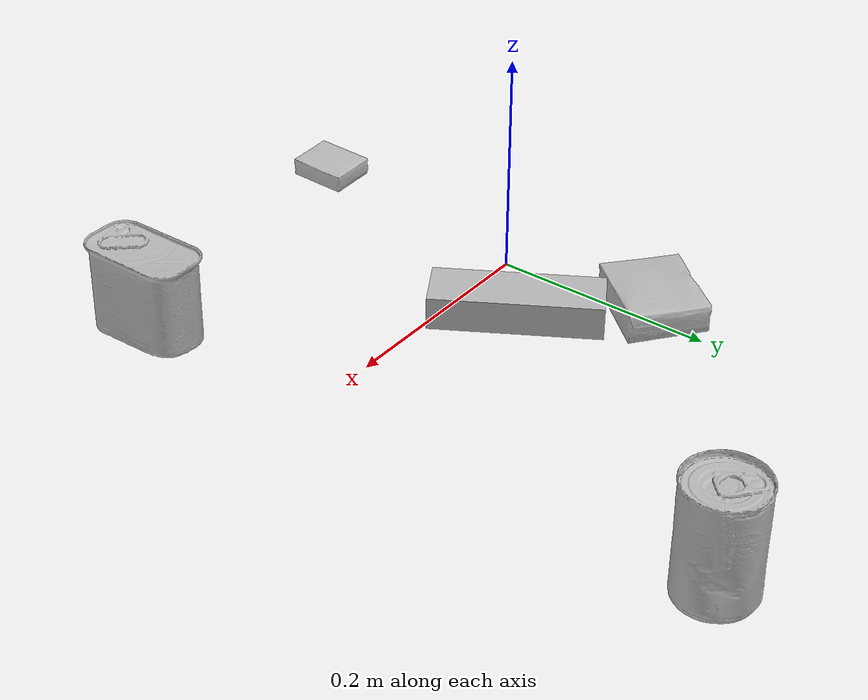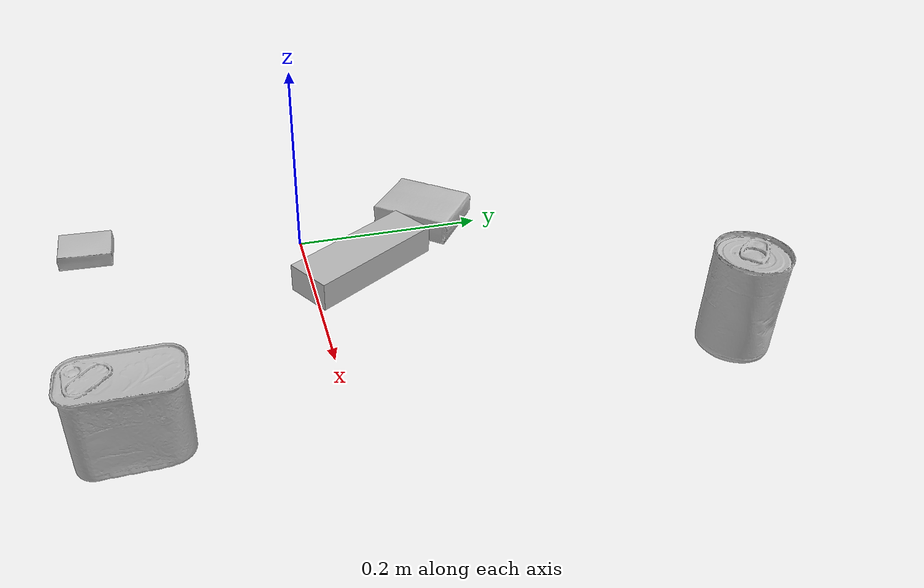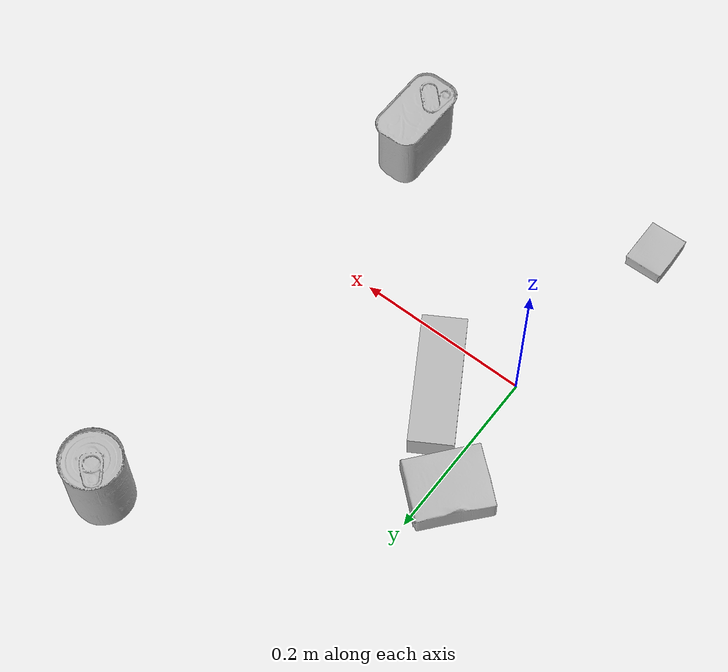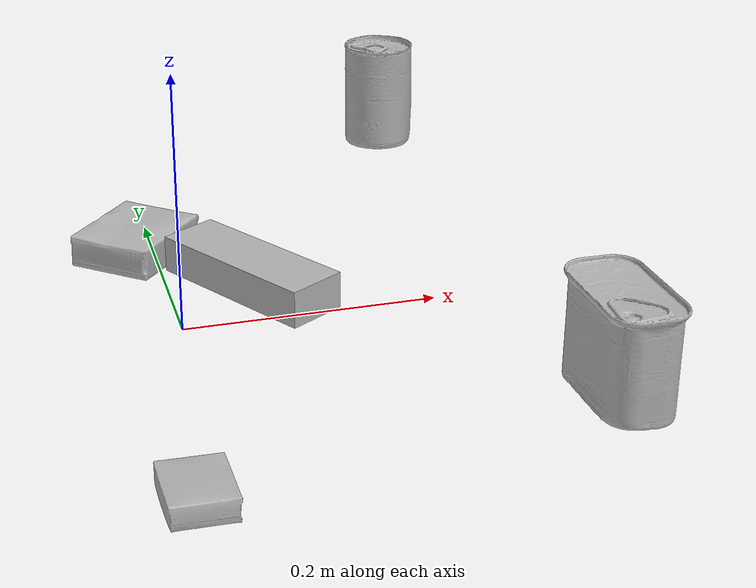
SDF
<sdf version="1.4">
  <world name="default">
    <light name="light1" type="point">
      <pose>0 0 1 0 0 0</pose>
      <diffuse>3 3 3 1</diffuse>
      <specular>3 3 3 1</specular>
    </light>
    <light name="light2" type="point">
      <pose>0 0.5 2 0 0 0</pose>
      <diffuse>1 1 1 1</diffuse>
      <specular>1 1 1 1</specular>
    </light>
    <light name="light3" type="point">
      <pose>0 0.5 2 0 0 0</pose>
      <diffuse>3 3 3 1</diffuse>
      <specular>3 3 3 1</specular>
    </light>
    <scene>
      <ambient>0.7 0.7 0.7</ambient>
    </scene>
    <model name="box1">
      <link name="link_box1">
        <collision name="default">
          <geometry>
            <mesh>
              <uri>model://pudding_box/collision_meshes/collision.obj</uri>
              <scale>0.5 0.5 0.5</scale>
            </mesh>
          </geometry>
          <surface>
            <friction>
              <ode>
                <mu>0.5</mu>
                <mu2>0.5</mu2>
              </ode>
            </friction>
          <contact>
        <ode>
            <max_vel>0</max_vel>
            <min_depth>0.0001</min_depth>
            <kp>1e8</kp>
        </ode>
    </contact></surface>
        </collision>
        <visual name="default">
          <geometry>
            <mesh>
              <uri>model://pudding_box/visual_meshes/visual.dae</uri>
              <scale>0.5 0.5 0.5</scale>
            </mesh>
          </geometry>
        </visual>
        <inertial>
          <mass>0.040720973163843155</mass>
          <pose>0.00024474109522998333 0.0004033942532259971 -0.0002594413817860186 0.005213101818388509 -0.006603799159636292 0.020079815843731863</pose>
          <inertia>
            <ixx>1.1508242e-05</ixx>
            <iyy>7.742825e-06</iyy>
            <izz>1.6994923e-05</izz>
            <ixy>0</ixy>
            <ixz>0</ixz>
            <iyz>0</iyz>
          </inertia>
        </inertial>
      </link>
      <pose>-0.029240304604172707 -0.2257527858018875 0.009862901642918587 0.022348584717983132 -0.011391658464476793 -3.1388839199913843</pose>
    </model>
    <model name="box2">
      <link name="link_box2">
        <collision name="default">
          <geometry>
            <mesh>
              <uri>model://jenga/collision_meshes/collision.obj</uri>
              <scale>1.0 1.0 1.0</scale>
            </mesh>
          </geometry>
          <surface>
            <friction>
              <ode>
                <mu>0.5</mu>
                <mu2>0.5</mu2>
              </ode>
            </friction>
          <contact>
        <ode>
            <max_vel>0</max_vel>
            <min_depth>0.0001</min_depth>
            <kp>1e8</kp>
        </ode>
    </contact></surface>
        </collision>
        <visual name="default">
          <geometry>
            <mesh>
              <uri>model://jenga/visual_meshes/visual.dae</uri>
              <scale>1.0 1.0 1.0</scale>
            </mesh>
          </geometry>
        </visual>
        <inertial>
          <mass>0.2260044664144516</mass>
          <pose>-2.502855807051674e-07 -0.00010250010382151231 -4.0923401684267446e-05 0.0 -7.34215461761844e-07 0.0</pose>
          <inertia>
            <ixx>6.254092e-05</ixx>
            <iyy>0.00042377558</iyy>
            <izz>0.00045241645</izz>
            <ixy>0</ixy>
            <ixz>0</ixz>
            <iyz>0</iyz>
          </inertia>
        </inertial>
      </link>
      <pose>0.06457347422838211 0.05597927048802376 0.014999994076788425 6.332923409685861e-09 -1.004333533920107e-11 -1.0308453057479974</pose>
    </model>
    <model name="box3">
      <link name="link_box3">
        <collision name="default">
          <geometry>
            <mesh>
              <uri>model://gelatin_box/collision_meshes/collision.obj</uri>
              <scale>1.0 1.0 1.0</scale>
            </mesh>
          </geometry>
          <surface>
            <friction>
              <ode>
                <mu>0.5</mu>
                <mu2>0.5</mu2>
              </ode>
            </friction>
          <contact>
        <ode>
            <max_vel>0</max_vel>
            <min_depth>0.0001</min_depth>
            <kp>1e8</kp>
        </ode>
    </contact></surface>
        </collision>
        <visual name="default">
          <geometry>
            <mesh>
              <uri>model://gelatin_box/visual_meshes/visual.dae</uri>
              <scale>1.0 1.0 1.0</scale>
            </mesh>
          </geometry>
        </visual>
        <inertial>
          <mass>0.21249663829803467</mass>
          <pose>0.000431961816502735 0.00011156871914863586 -0.0003640321083366871 -0.0010503720865678746 -0.004755816824885886 0.016440563196489677</pose>
          <inertia>
            <ixx>0.00015000527</ixx>
            <iyy>0.000107147986</iyy>
            <izz>0.00022834145</izz>
            <ixy>0</ixy>
            <ixz>0</ixz>
            <iyz>0</iyz>
          </inertia>
        </inertial>
      </link>
      <pose>-0.01401289738714695 0.14346353709697723 0.015168311074376106 0.005597419177988413 -0.007304524835803586 2.4328117614495546</pose>
    </model>
    <model name="can1">
      <link name="link_can1">
        <collision name="default">
          <geometry>
            <mesh>
              <uri>model://tomato_soup_can/collision_meshes/collision.obj</uri>
              <scale>1.0 1.0 1.0</scale>
            </mesh>
          </geometry>
          <surface>
            <friction>
              <ode>
                <mu>0.5</mu>
                <mu2>0.5</mu2>
              </ode>
            </friction>
          <contact>
        <ode>
            <max_vel>0</max_vel>
            <min_depth>0.0001</min_depth>
            <kp>1e8</kp>
        </ode>
    </contact></surface>
        </collision>
        <visual name="default">
          <geometry>
            <mesh>
              <uri>model://tomato_soup_can/visual_meshes/visual.dae</uri>
              <scale>1.0 1.0 1.0</scale>
            </mesh>
          </geometry>
        </visual>
        <inertial>
          <mass>0.23179346323013306</mass>
          <pose>0.00012652273289859295 0.00010805525380419567 -0.0017973976209759712 0.00702006934742656 0.00042299045868732465 -0.009902874376192201</pose>
          <inertia>
            <ixx>0.0002541419</ixx>
            <iyy>0.00025267305</iyy>
            <izz>0.00013171937</izz>
            <ixy>0</ixy>
            <ixz>0</ixz>
            <iyz>0</iyz>
          </inertia>
        </inertial>
      </link>
      <pose>0.26552242040634155 0.3653271794319153 0.05127402022480965 -3.1144017137955755e-07 -3.668363530067895e-07 -2.6427046745853207</pose>
    </model>
    <model name="can2">
      <link name="link_can2">
        <collision name="default">
          <geometry>
            <mesh>
              <uri>model://potted_meat_can/collision_meshes/collision.obj</uri>
              <scale>1.0 1.0 1.0</scale>
            </mesh>
          </geometry>
          <surface>
            <friction>
              <ode>
                <mu>0.5</mu>
                <mu2>0.5</mu2>
              </ode>
            </friction>
          <contact>
        <ode>
            <max_vel>0</max_vel>
            <min_depth>0.0001</min_depth>
            <kp>1e8</kp>
        </ode>
    </contact></surface>
        </collision>
        <visual name="default">
          <geometry>
            <mesh>
              <uri>model://potted_meat_can/visual_meshes/visual.dae</uri>
              <scale>1.0 1.0 1.0</scale>
            </mesh>
          </geometry>
        </visual>
        <inertial>
          <mass>0.3195023536682129</mass>
          <pose>0.00022888148669153452 -5.98910846747458e-05 -0.0006367437308654189 -0.028093352727545092 -0.0072326048209280834 0.015406269022640915</pose>
          <inertia>
            <ixx>0.00041100648</ixx>
            <iyy>0.0002497176</iyy>
            <izz>0.00029892896</izz>
            <ixy>0</ixy>
            <ixz>0</ixz>
            <iyz>0</iyz>
          </inertia>
        </inertial>
      </link>
      <pose>0.27047038078308105 -0.17690350115299225 0.04212800785899162 -3.3097243609632095e-08 -4.7485617352544036e-07 -0.010893279999455304</pose>
    </model>
  <physics type="ode">
      <max_contacts>50</max_contacts>
      <ode>
        <solver>
          <type>quick</type>
          <iters>75</iters>
        </solver>
        <constraints>
          <contact_max_correcting_vel>0</contact_max_correcting_vel>
          <contact_surface_layer>0</contact_surface_layer>
        </constraints>
      </ode>
    </physics></world>
</sdf>
